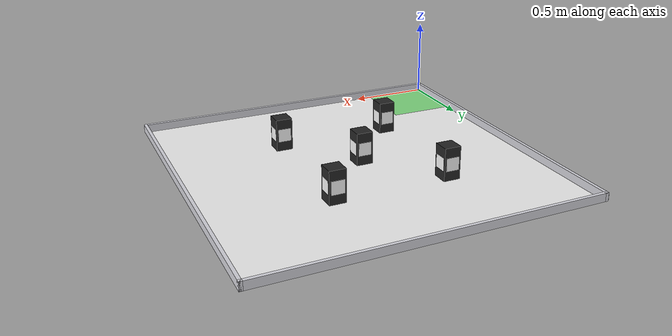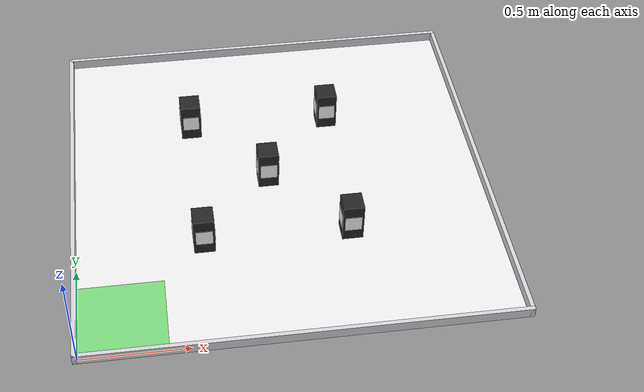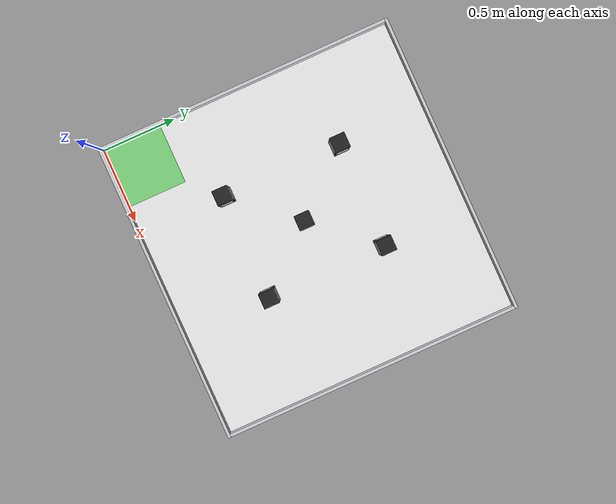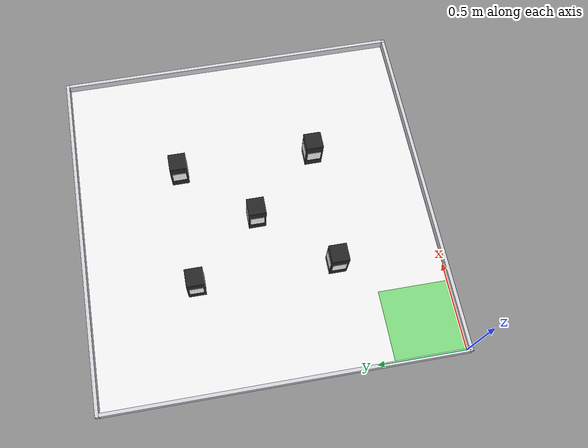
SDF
<?xml version="1.0" ?>
<sdf version="1.8">
  <world name="mdp_arena">
    <!-- Physics engine settings -->
    <physics name="1ms" type="ignored">
      <max_step_size>0.002</max_step_size>
      <real_time_factor>1.0</real_time_factor>
    </physics>

    <!-- Essential Gazebo Harmonic system plugins -->
    <plugin filename="gz-sim-physics-system" name="gz::sim::systems::Physics"/>
    <plugin filename="gz-sim-sensors-system" name="gz::sim::systems::Sensors">
      <render_engine>ogre2</render_engine>
    </plugin>
    <plugin filename="gz-sim-scene-broadcaster-system" name="gz::sim::systems::SceneBroadcaster"/>
    <plugin filename="gz-sim-user-commands-system" name="gz::sim::systems::UserCommands"/>

    <!-- Realistic Lab Lighting -->
    <light type="directional" name="sun">
      <cast_shadows>true</cast_shadows>
      <pose>1.0 1.0 10.0 0 0 0</pose>
      <diffuse>0.9 0.9 0.9 1</diffuse>
      <specular>0.3 0.3 0.3 1</specular>
      <direction>-0.15 -0.15 -1.0</direction>
    </light>

    <scene>
      <ambient>0.65 0.65 0.65 1.0</ambient>
      <background>0.82 0.86 0.90 1.0</background>
      <shadows>true</shadows>
    </scene>

    <!-- Floor (2.0m x 2.0m arena with 10cm grid and 40cm start carpark) -->
    <model name="arena_floor">
      <static>true</static>
      <link name="floor_link">
        <collision name="floor_collision">
          <geometry>
            <plane>
              <normal>0 0 1</normal>
              <size>10.0 10.0</size>
            </plane>
          </geometry>
          <surface>
            <friction>
              <ode>
                <mu>1.0</mu>
                <mu2>1.0</mu2>
              </ode>
            </friction>
          </surface>
        </collision>

        <!-- 2.0m x 2.0m Arena Floor Surface (white board matching NTU lab) -->
        <visual name="arena_surface">
          <pose>1.0 1.0 0.0005 0 0 0</pose>
          <geometry>
            <box>
              <size>2.0 2.0 0.001</size>
            </box>
          </geometry>
          <material>
            <ambient>0.96 0.96 0.96 1</ambient>
            <diffuse>0.96 0.96 0.96 1</diffuse>
            <pbr>
              <metal>
                <albedo_map>materials/textures/arena_grid.png</albedo_map>
              </metal>
            </pbr>
          </material>
        </visual>

        <!-- 40cm x 40cm Start Zone at [0, 0] to [0.4, 0.4] -->
        <visual name="start_zone_carpark">
          <pose>0.20 0.20 0.0012 0 0 0</pose>
          <geometry>
            <box>
              <size>0.40 0.40 0.0005</size>
            </box>
          </geometry>
          <material>
            <ambient>0.25 0.85 0.25 0.6</ambient>
            <diffuse>0.25 0.85 0.25 0.6</diffuse>
          </material>
        </visual>
      </link>
    </model>

    <!-- Realistic Low Arena Border (2.0m x 2.0m, height 0.05m = 5cm, thickness 0.02m) -->
    <model name="boundary_walls">
      <static>true</static>
      <link name="walls_link">
        <!-- South Border (y = 0) -->
        <collision name="south_wall_col">
          <pose>1.0 -0.01 0.025 0 0 0</pose>
          <geometry><box><size>2.04 0.02 0.05</size></box></geometry>
        </collision>
        <visual name="south_wall_vis">
          <pose>1.0 -0.01 0.025 0 0 0</pose>
          <geometry><box><size>2.04 0.02 0.05</size></box></geometry>
          <material><ambient>0.85 0.85 0.88 1</ambient><diffuse>0.85 0.85 0.88 1</diffuse></material>
        </visual>

        <!-- North Border (y = 2.0) -->
        <collision name="north_wall_col">
          <pose>1.0 2.01 0.025 0 0 0</pose>
          <geometry><box><size>2.04 0.02 0.05</size></box></geometry>
        </collision>
        <visual name="north_wall_vis">
          <pose>1.0 2.01 0.025 0 0 0</pose>
          <geometry><box><size>2.04 0.02 0.05</size></box></geometry>
          <material><ambient>0.85 0.85 0.88 1</ambient><diffuse>0.85 0.85 0.88 1</diffuse></material>
        </visual>

        <!-- West Border (x = 0) -->
        <collision name="west_wall_col">
          <pose>-0.01 1.0 0.025 0 0 0</pose>
          <geometry><box><size>0.02 2.04 0.05</size></box></geometry>
        </collision>
        <visual name="west_wall_vis">
          <pose>-0.01 1.0 0.025 0 0 0</pose>
          <geometry><box><size>0.02 2.04 0.05</size></box></geometry>
          <material><ambient>0.85 0.85 0.88 1</ambient><diffuse>0.85 0.85 0.88 1</diffuse></material>
        </visual>

        <!-- East Border (x = 2.0) -->
        <collision name="east_wall_col">
          <pose>2.01 1.0 0.025 0 0 0</pose>
          <geometry><box><size>0.02 2.04 0.05</size></box></geometry>
        </collision>
        <visual name="east_wall_vis">
          <pose>2.01 1.0 0.025 0 0 0</pose>
          <geometry><box><size>0.02 2.04 0.05</size></box></geometry>
          <material><ambient>0.85 0.85 0.88 1</ambient><diffuse>0.85 0.85 0.88 1</diffuse></material>
        </visual>
      </link>
    </model>

    <!-- ================= 5 SC2079 COURSE OBSTACLES ================= -->
    <!-- Matches algorithm/arena.py default_arena() and course briefing specifications -->

    <!-- Obstacle 1: Center (0.60m, 0.60m), Size 10x10x20cm, Target Face: North (Symbol '1' / ID 11) -->
    <model name="obstacle_1">
      <static>true</static>
      <pose>0.60 0.60 0.10 0 0 0</pose>
      <link name="link">
        <collision name="col">
          <geometry><box><size>0.10 0.10 0.20</size></box></geometry>
        </collision>
        <visual name="block_body">
          <geometry><box><size>0.10 0.10 0.20</size></box></geometry>
          <material><ambient>0.15 0.15 0.15 1</ambient><diffuse>0.15 0.15 0.15 1</diffuse></material>
        </visual>
        <!-- Target Face: North (+Y) with Symbol '1' -->
        <visual name="target_face_north">
          <pose>0 0.051 0 1.570796 0 0</pose>
          <geometry><box><size>0.08 0.08 0.002</size></box></geometry>
          <material>
            <ambient>1 1 1 1</ambient><diffuse>1 1 1 1</diffuse>
            <pbr><metal><albedo_map>materials/textures/target_1.png</albedo_map></metal></pbr>
          </material>
        </visual>
        <!-- Bull's Eye Markers on the other 3 faces (South, East, West) -->
        <visual name="bullseye_south">
          <pose>0 -0.051 0 1.570796 0 3.14159</pose>
          <geometry><box><size>0.08 0.08 0.002</size></box></geometry>
          <material>
            <ambient>1 1 1 1</ambient><diffuse>1 1 1 1</diffuse>
            <pbr><metal><albedo_map>materials/textures/bullseye.png</albedo_map></metal></pbr>
          </material>
        </visual>
        <visual name="bullseye_east">
          <pose>0.051 0 0 0 1.570796 0</pose>
          <geometry><box><size>0.08 0.08 0.002</size></box></geometry>
          <material>
            <ambient>1 1 1 1</ambient><diffuse>1 1 1 1</diffuse>
            <pbr><metal><albedo_map>materials/textures/bullseye.png</albedo_map></metal></pbr>
          </material>
        </visual>
        <visual name="bullseye_west">
          <pose>-0.051 0 0 0 1.570796 3.14159</pose>
          <geometry><box><size>0.08 0.08 0.002</size></box></geometry>
          <material>
            <ambient>1 1 1 1</ambient><diffuse>1 1 1 1</diffuse>
            <pbr><metal><albedo_map>materials/textures/bullseye.png</albedo_map></metal></pbr>
          </material>
        </visual>
      </link>
    </model>

    <!-- Obstacle 2: Center (1.30m, 0.60m), Size 10x10x20cm, Target Face: East (Letter 'B' / ID 22) -->
    <model name="obstacle_2">
      <static>true</static>
      <pose>1.30 0.60 0.10 0 0 0</pose>
      <link name="link">
        <collision name="col">
          <geometry><box><size>0.10 0.10 0.20</size></box></geometry>
        </collision>
        <visual name="block_body">
          <geometry><box><size>0.10 0.10 0.20</size></box></geometry>
          <material><ambient>0.15 0.15 0.15 1</ambient><diffuse>0.15 0.15 0.15 1</diffuse></material>
        </visual>
        <!-- Target Face: East (+X) with Letter 'B' -->
        <visual name="target_face_east">
          <pose>0.051 0 0 0 1.570796 0</pose>
          <geometry><box><size>0.08 0.08 0.002</size></box></geometry>
          <material>
            <ambient>1 1 1 1</ambient><diffuse>1 1 1 1</diffuse>
            <pbr><metal><albedo_map>materials/textures/target_b.png</albedo_map></metal></pbr>
          </material>
        </visual>
        <!-- Bull's Eye Markers on West, North, South -->
        <visual name="bullseye_west">
          <pose>-0.051 0 0 0 1.570796 3.14159</pose>
          <geometry><box><size>0.08 0.08 0.002</size></box></geometry>
          <material>
            <ambient>1 1 1 1</ambient><diffuse>1 1 1 1</diffuse>
            <pbr><metal><albedo_map>materials/textures/bullseye.png</albedo_map></metal></pbr>
          </material>
        </visual>
        <visual name="bullseye_north">
          <pose>0 0.051 0 1.570796 0 0</pose>
          <geometry><box><size>0.08 0.08 0.002</size></box></geometry>
          <material>
            <ambient>1 1 1 1</ambient><diffuse>1 1 1 1</diffuse>
            <pbr><metal><albedo_map>materials/textures/bullseye.png</albedo_map></metal></pbr>
          </material>
        </visual>
        <visual name="bullseye_south">
          <pose>0 -0.051 0 1.570796 0 3.14159</pose>
          <geometry><box><size>0.08 0.08 0.002</size></box></geometry>
          <material>
            <ambient>1 1 1 1</ambient><diffuse>1 1 1 1</diffuse>
            <pbr><metal><albedo_map>materials/textures/bullseye.png</albedo_map></metal></pbr>
          </material>
        </visual>
      </link>
    </model>

    <!-- Obstacle 3: Center (1.30m, 1.40m), Size 10x10x20cm, Target Face: West (Letter 'W' / ID 33) -->
    <model name="obstacle_3">
      <static>true</static>
      <pose>1.30 1.40 0.10 0 0 0</pose>
      <link name="link">
        <collision name="col">
          <geometry><box><size>0.10 0.10 0.20</size></box></geometry>
        </collision>
        <visual name="block_body">
          <geometry><box><size>0.10 0.10 0.20</size></box></geometry>
          <material><ambient>0.15 0.15 0.15 1</ambient><diffuse>0.15 0.15 0.15 1</diffuse></material>
        </visual>
        <!-- Target Face: West (-X) with Letter 'W' -->
        <visual name="target_face_west">
          <pose>-0.051 0 0 0 1.570796 3.14159</pose>
          <geometry><box><size>0.08 0.08 0.002</size></box></geometry>
          <material>
            <ambient>1 1 1 1</ambient><diffuse>1 1 1 1</diffuse>
            <pbr><metal><albedo_map>materials/textures/target_w.png</albedo_map></metal></pbr>
          </material>
        </visual>
        <!-- Bull's Eye Markers on East, North, South -->
        <visual name="bullseye_east">
          <pose>0.051 0 0 0 1.570796 0</pose>
          <geometry><box><size>0.08 0.08 0.002</size></box></geometry>
          <material>
            <ambient>1 1 1 1</ambient><diffuse>1 1 1 1</diffuse>
            <pbr><metal><albedo_map>materials/textures/bullseye.png</albedo_map></metal></pbr>
          </material>
        </visual>
        <visual name="bullseye_north">
          <pose>0 0.051 0 1.570796 0 0</pose>
          <geometry><box><size>0.08 0.08 0.002</size></box></geometry>
          <material>
            <ambient>1 1 1 1</ambient><diffuse>1 1 1 1</diffuse>
            <pbr><metal><albedo_map>materials/textures/bullseye.png</albedo_map></metal></pbr>
          </material>
        </visual>
        <visual name="bullseye_south">
          <pose>0 -0.051 0 1.570796 0 3.14159</pose>
          <geometry><box><size>0.08 0.08 0.002</size></box></geometry>
          <material>
            <ambient>1 1 1 1</ambient><diffuse>1 1 1 1</diffuse>
            <pbr><metal><albedo_map>materials/textures/bullseye.png</albedo_map></metal></pbr>
          </material>
        </visual>
      </link>
    </model>

    <!-- Obstacle 4: Center (0.60m, 1.40m), Size 10x10x20cm, Target Face: South (Symbol '4' / ID 14) -->
    <model name="obstacle_4">
      <static>true</static>
      <pose>0.60 1.40 0.10 0 0 0</pose>
      <link name="link">
        <collision name="col">
          <geometry><box><size>0.10 0.10 0.20</size></box></geometry>
        </collision>
        <visual name="block_body">
          <geometry><box><size>0.10 0.10 0.20</size></box></geometry>
          <material><ambient>0.15 0.15 0.15 1</ambient><diffuse>0.15 0.15 0.15 1</diffuse></material>
        </visual>
        <!-- Target Face: South (-Y) with Symbol '4' -->
        <visual name="target_face_south">
          <pose>0 -0.051 0 1.570796 0 3.14159</pose>
          <geometry><box><size>0.08 0.08 0.002</size></box></geometry>
          <material>
            <ambient>1 1 1 1</ambient><diffuse>1 1 1 1</diffuse>
            <pbr><metal><albedo_map>materials/textures/target_4.png</albedo_map></metal></pbr>
          </material>
        </visual>
        <!-- Bull's Eye Markers on North, East, West -->
        <visual name="bullseye_north">
          <pose>0 0.051 0 1.570796 0 0</pose>
          <geometry><box><size>0.08 0.08 0.002</size></box></geometry>
          <material>
            <ambient>1 1 1 1</ambient><diffuse>1 1 1 1</diffuse>
            <pbr><metal><albedo_map>materials/textures/bullseye.png</albedo_map></metal></pbr>
          </material>
        </visual>
        <visual name="bullseye_east">
          <pose>0.051 0 0 0 1.570796 0</pose>
          <geometry><box><size>0.08 0.08 0.002</size></box></geometry>
          <material>
            <ambient>1 1 1 1</ambient><diffuse>1 1 1 1</diffuse>
            <pbr><metal><albedo_map>materials/textures/bullseye.png</albedo_map></metal></pbr>
          </material>
        </visual>
        <visual name="bullseye_west">
          <pose>-0.051 0 0 0 1.570796 3.14159</pose>
          <geometry><box><size>0.08 0.08 0.002</size></box></geometry>
          <material>
            <ambient>1 1 1 1</ambient><diffuse>1 1 1 1</diffuse>
            <pbr><metal><albedo_map>materials/textures/bullseye.png</albedo_map></metal></pbr>
          </material>
        </visual>
      </link>
    </model>

    <!-- Obstacle 5: Center (0.95m, 1.00m), Size 10x10x20cm, Target Face: North (Letter 'E' / ID 25) -->
    <model name="obstacle_5">
      <static>true</static>
      <pose>0.95 1.00 0.10 0 0 0</pose>
      <link name="link">
        <collision name="col">
          <geometry><box><size>0.10 0.10 0.20</size></box></geometry>
        </collision>
        <visual name="block_body">
          <geometry><box><size>0.10 0.10 0.20</size></box></geometry>
          <material><ambient>0.15 0.15 0.15 1</ambient><diffuse>0.15 0.15 0.15 1</diffuse></material>
        </visual>
        <!-- Target Face: North (+Y) with Letter 'E' -->
        <visual name="target_face_north">
          <pose>0 0.051 0 1.570796 0 0</pose>
          <geometry><box><size>0.08 0.08 0.002</size></box></geometry>
          <material>
            <ambient>1 1 1 1</ambient><diffuse>1 1 1 1</diffuse>
            <pbr><metal><albedo_map>materials/textures/target_e.png</albedo_map></metal></pbr>
          </material>
        </visual>
        <!-- Bull's Eye Markers on South, East, West -->
        <visual name="bullseye_south">
          <pose>0 -0.051 0 1.570796 0 3.14159</pose>
          <geometry><box><size>0.08 0.08 0.002</size></box></geometry>
          <material>
            <ambient>1 1 1 1</ambient><diffuse>1 1 1 1</diffuse>
            <pbr><metal><albedo_map>materials/textures/bullseye.png</albedo_map></metal></pbr>
          </material>
        </visual>
        <visual name="bullseye_east">
          <pose>0.051 0 0 0 1.570796 0</pose>
          <geometry><box><size>0.08 0.08 0.002</size></box></geometry>
          <material>
            <ambient>1 1 1 1</ambient><diffuse>1 1 1 1</diffuse>
            <pbr><metal><albedo_map>materials/textures/bullseye.png</albedo_map></metal></pbr>
          </material>
        </visual>
        <visual name="bullseye_west">
          <pose>-0.051 0 0 0 1.570796 3.14159</pose>
          <geometry><box><size>0.08 0.08 0.002</size></box></geometry>
          <material>
            <ambient>1 1 1 1</ambient><diffuse>1 1 1 1</diffuse>
            <pbr><metal><albedo_map>materials/textures/bullseye.png</albedo_map></metal></pbr>
          </material>
        </visual>
      </link>
    </model>

  </world>
</sdf>
